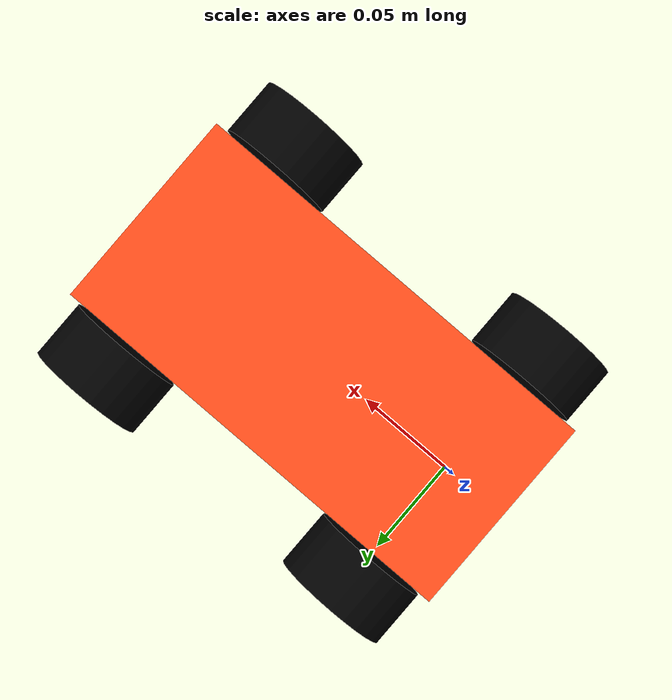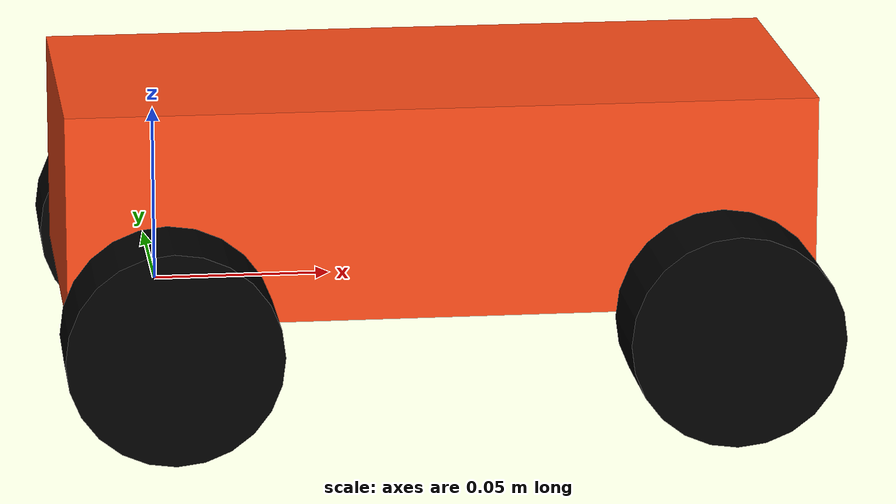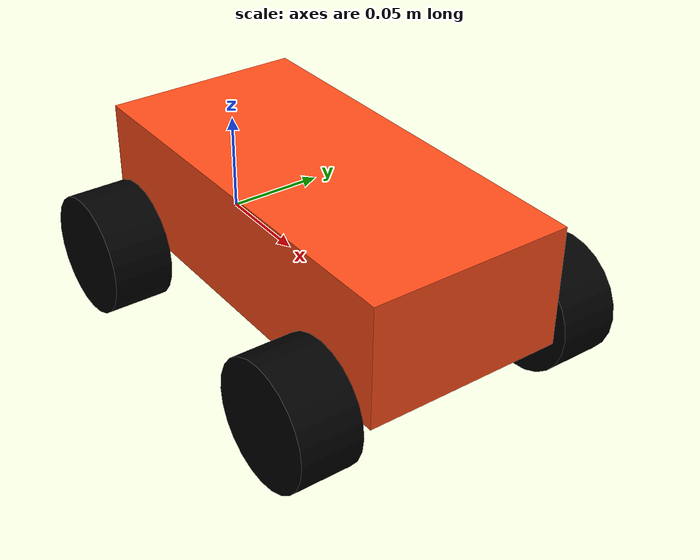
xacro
<?xml version="1.0"?>
<robot xmlns:xacro="http://www.ros.org/wiki/xacro">

    <xacro:include filename="inertial_macros.xacro"/>

    <xacro:property name="chassis_length"     value="0.210"/>
    <xacro:property name="chassis_width"      value="0.100"/>
    <xacro:property name="chassis_height"     value="0.060"/>
    <xacro:property name="chassis_mass"       value="1.2"/>
    <xacro:property name="wheel_radius"       value="0.03"/>
    <xacro:property name="wheel_thickness"    value="0.03"/>
    <xacro:property name="wheel_offset"       value="0.14"/>      <!-- total distance between wheels -->
    <xacro:property name="wheel_mass"         value="0.06"/>

    <material name="white">
        <color rgba="1 1 1 1" />
    </material>

    <material name="orange">
        <color rgba="1 0.3 0.1 1"/>
    </material>

    <material name="blue">
        <color rgba="0.2 0.2 1 1"/>
    </material>

    <material name="black">
        <color rgba="0 0 0 1"/>
    </material>

    <material name="red">
        <color rgba="1 0 0 1"/>
    </material>

    <material name="green">
        <color rgba="0 1 0 1"/>
    </material>

    <!-- BASE LINK -->

    <link name="base_link"/>

    <!-- BASE_FOOTPRINT LINK -->

    <joint name="base_footprint_joint" type="fixed">
        <parent link="base_link"/>
        <child link="base_footprint"/>
        <origin xyz="0 0 -0.03" rpy="0 0 0"/>
    </joint>

    <link name="base_footprint">
    </link>

    <!-- CHASSIS LINK -->

    <link name="chassis">
        <visual>
            <origin xyz="${chassis_length/2} 0 ${chassis_height/2}"/>
            <geometry>
                <box size="${chassis_length} ${chassis_width} ${chassis_height}"/>
            </geometry>
            <material name="orange"/>
        </visual>
        <collision>
            <origin xyz="${chassis_length/2} 0 ${chassis_height/2}"/>
            <geometry>
                <box size="${chassis_length} ${chassis_width} ${chassis_height}"/>
            </geometry>
        </collision>
        <xacro:inertial_box mass="0.5" x="${chassis_length}" y="${chassis_width}" z="${chassis_height}">
            <origin xyz="${chassis_length/2} 0 ${chassis_height/2}" rpy="0 0 0"/>
        </xacro:inertial_box>
    </link>

    <!-- CHASSIS JOINT -->

    <joint name="chassis_joint" type="fixed">
        <parent link="base_link"/>
        <child link="chassis"/>
        <origin xyz="-0.0275 0 0" rpy="0 0 0"/>
    </joint>

    <!-- WHEEL LEFT LINK -->

    <link name="left_wheel">
        <visual>
            <geometry>
                <cylinder radius="${wheel_radius}" length="${wheel_thickness}"/>
            </geometry>
            <material name="black"/>
        </visual>
        <collision>
            <geometry>
                <sphere radius="${wheel_radius}"/>
            </geometry>
        </collision>
        <xacro:inertial_cylinder mass="${wheel_mass}" length="${wheel_thickness}" radius="${wheel_radius}">
            <origin xyz="0 0 0" rpy="0 0 0"/>
        </xacro:inertial_cylinder>
    </link>

    <!-- LEFT WHEEL JOINT -->

    <joint name="left_wheel_joint" type="continuous">
        <parent link="base_link"/>
        <child link="left_wheel"/>
        <origin xyz="0 ${wheel_offset/2} 0" rpy="${pi/2} 0 0"/>
        <axis xyz="0 0 -1"/>
    </joint>

    <!-- RIGHT WHEEL LINK -->

    <link name="right_wheel">
        <visual>
            <geometry>
                <cylinder radius="${wheel_radius}" length="${wheel_thickness}"/>
            </geometry>
            <material name="black"/>
        </visual>
        <collision>
            <geometry>
                <sphere radius="${wheel_radius}"/>
            </geometry>
        </collision>
        <xacro:inertial_cylinder mass="${wheel_mass}" length="${wheel_thickness}" radius="${wheel_radius}">
            <origin xyz="0 0 0" rpy="0 0 0"/>
        </xacro:inertial_cylinder>
    </link>

    <!-- RIGHT WHEEL JOINT -->

    <joint name="right_wheel_joint" type="continuous">
        <parent link="base_link"/>
        <child link="right_wheel"/>
        <origin xyz="0 -${wheel_offset/2} 0" rpy="${pi/2} 0 0"/>
        <axis xyz="0 0 -1"/>
    </joint>

    <!-- ________________ Fixed Wheels __________________-->

    <!-- FL WHEEL LINK -->

    <link name="fl_wheel">
        <visual>
            <geometry>
                <cylinder radius="${wheel_radius}" length="${wheel_thickness}"/>
            </geometry>
            <material name="black"/>
        </visual>
        <collision>
            <geometry>
                <sphere radius="${wheel_radius}"/>
            </geometry>
        </collision>
        <xacro:inertial_cylinder mass="${wheel_mass}" length="${wheel_thickness}" radius="${wheel_radius}">
            <origin xyz="0 0 0" rpy="0 0 0"/>
        </xacro:inertial_cylinder>
    </link>

    <!-- FL WHEEL JOINT -->

    <joint name="fl_wheel_joint" type="fixed">
        <parent link="chassis"/>
        <child link="fl_wheel"/>
        <origin xyz="0.1825 ${wheel_offset/2} 0" rpy="${pi/2} 0 0"/>
    </joint>

    <!-- FR WHEEL LINK -->

    <link name="fr_wheel">
        <visual>
            <geometry>
                <cylinder radius="${wheel_radius}" length="${wheel_thickness}"/>
            </geometry>
            <material name="black"/>
        </visual>
        <collision>
            <geometry>
                <sphere radius="${wheel_radius}"/>
            </geometry>
        </collision>
        <xacro:inertial_cylinder mass="${wheel_mass}" length="${wheel_thickness}" radius="${wheel_radius}">
            <origin xyz="0 0 0" rpy="0 0 0"/>
        </xacro:inertial_cylinder>
    </link>

    <!-- FR WHEEL JOINT -->

    <joint name="fr_wheel_joint" type="fixed">
        <parent link="chassis"/>
        <child link="fr_wheel"/>
        <origin xyz="0.1825 -${wheel_offset/2} 0" rpy="${pi/2} 0 0"/>
    </joint>

</robot>

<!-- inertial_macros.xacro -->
<robot xmlns:xacro="http://www.ros.org/wiki/xacro" >

    <xacro:macro name="inertial_sphere" params="mass radius *origin">
        <inertial>
            <xacro:insert_block name="origin"/>
            <mass value="${mass}" />
            <inertia ixx="${(2/5) * mass * (radius*radius)}" ixy="0.0" ixz="0.0"
                    iyy="${(2/5) * mass * (radius*radius)}" iyz="0.0"
                    izz="${(2/5) * mass * (radius*radius)}" />
        </inertial>
    </xacro:macro>

    <xacro:macro name="inertial_box" params="mass x y z *origin">
        <inertial>
            <xacro:insert_block name="origin"/>
            <mass value="${mass}" />
            <inertia ixx="${(1/12) * mass * (y*y+z*z)}" ixy="0.0" ixz="0.0"
                    iyy="${(1/12) * mass * (x*x+z*z)}" iyz="0.0"
                    izz="${(1/12) * mass * (x*x+y*y)}" />
        </inertial>
    </xacro:macro>

    <xacro:macro name="inertial_cylinder" params="mass length radius *origin">
        <inertial>
            <xacro:insert_block name="origin"/>
            <mass value="${mass}" />
            <inertia ixx="${(1/12) * mass * (3*radius*radius + length*length)}" ixy="0.0" ixz="0.0"
                    iyy="${(1/12) * mass * (3*radius*radius + length*length)}" iyz="0.0"
                    izz="${(1/2) * mass * (radius*radius)}" />
        </inertial>
    </xacro:macro>

</robot>
